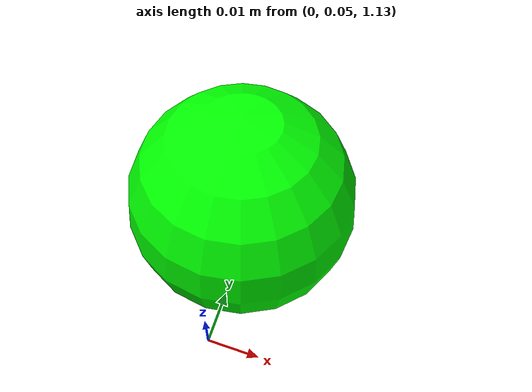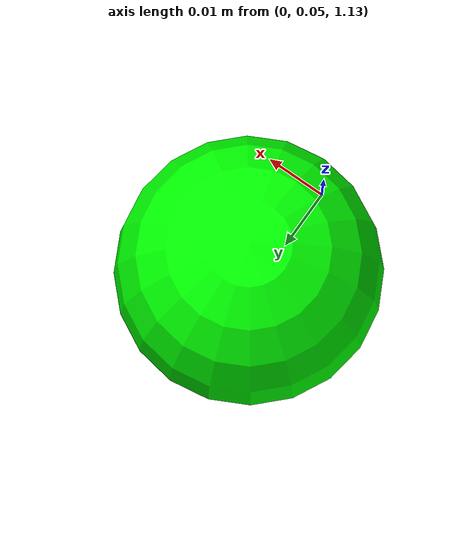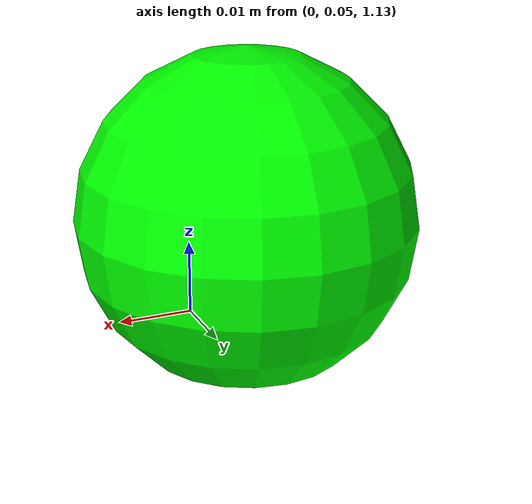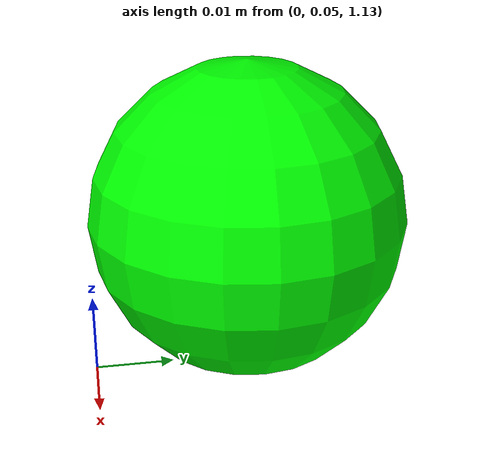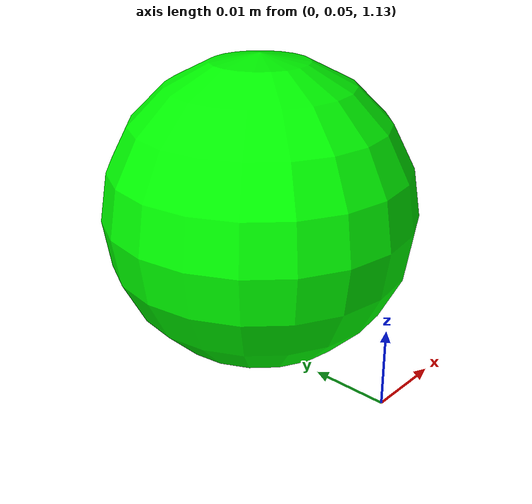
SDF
<?xml version='1.0'?>
<sdf version='1.6'>
    <model name="ball6">
        <static>false</static>
        <pose>0 0.07 1.15 0 0 0</pose>
        <link name="sphere_link">
            <inertial>
                <mass>0.01</mass>
                <inertia>
                    <ixx>0.00004</ixx>
                    <iyy>0.00004</iyy>
                    <izz>0.00004</izz>
                    <ixy>0.0</ixy>
                    <ixz>0.0</ixz>
                    <iyz>0.0</iyz>
                </inertia>
            </inertial>
            <collision name="sphere_collision">
                <geometry>
                    <sphere>
                        <radius>0.020</radius>
                    </sphere>
                </geometry>
            </collision>
            <visual name="sphere_visual">
                <geometry>
                    <sphere>
                        <radius>0.020</radius>
                    </sphere>
                </geometry>
                <material>
                    <ambient>0 1 0 1</ambient>
                    <diffuse>0 1 0 1</diffuse>
                    <specular>0 1 0 1</specular>
                </material>
                <cast_shadows>false</cast_shadows>
            </visual>
        </link>
    </model>
</sdf>
